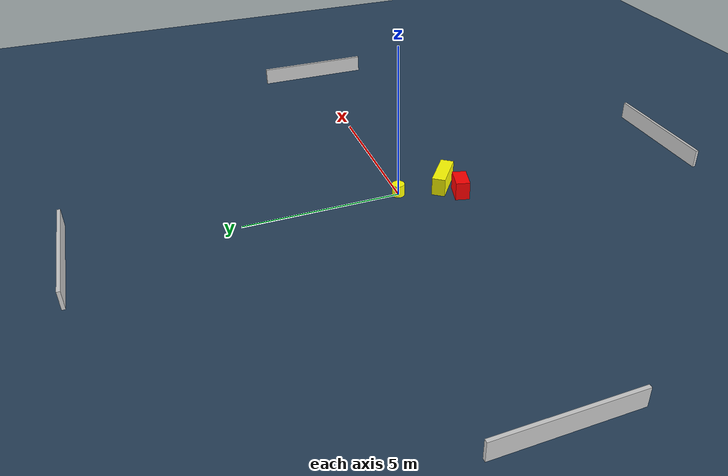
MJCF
<?xml version="1.0" ?>
<mujoco model="generated_environment">
  <option timestep="0.01" integrator="RK4" cone="elliptic"/>
  <default>
    <geom density="1"/>
  </default>
  <asset>
    <texture builtin="gradient" height="3072" name="skybox" rgb1="0.3 0.5 0.7" rgb2="0 0 0" type="skybox" width="512"/>
    <texture builtin="checker" height="300" name="groundplane" rgb1="0.2 0.3 0.4" rgb2="0.1 0.2 0.3" type="2d" width="300"/>
    <material name="groundplane" reflectance="0.2" texrepeat="5 5" texture="groundplane"/>
  </asset>
  <worldbody>
    <light dir="0 0 -1" directional="true" pos="0 0 1.5"/>
    <geom condim="3" friction="0.5 0.005 0.001" material="groundplane" name="floor" pos="0 0 0" size="0 0 0.05" type="plane"/>
    <body name="walls">
      <geom name="wall_1" condim="4" pos="-10.0 0.0 0.3" rgba="0.800000011920929 0.800000011920929 0.800000011920929 1.0" size="0.05 2.0 0.3" type="box"/>
      <geom name="wall_2" condim="4" pos="10.0 0.0 0.3" rgba="0.800000011920929 0.800000011920929 0.800000011920929 1.0" size="0.05 2.0 0.3" type="box"/>
      <geom name="wall_3" condim="4" pos="0.0 -10.0 0.3" rgba="0.800000011920929 0.800000011920929 0.800000011920929 1.0" size="2.0 0.05 0.3" type="box"/>
      <geom name="wall_4" condim="4" pos="0.0 10.0 0.3" rgba="0.800000011920929 0.800000011920929 0.800000011920929 1.0" size="2.0 0.05 0.3" type="box"/>
    </body>
    <body name="robot">
      <joint name="joint_x" type="slide" pos="0 0 0" axis="1 0 0"/>
      <joint name="joint_y" type="slide" pos="0 0 0" axis="0 1 0"/>
      <geom name="robot" type="cylinder" pos="0.0 0.0 0.2" size="0.2 0.2 0.0" mass="5.0" friction="1.0 0.005 0.0001" condim="4" rgba="1.0 1.0 0.0 1.0"/>
    </body>
    <body name="obstacle_1_movable">
      <geom name="obstacle_1_movable" condim="4" pos="-0.02198553100770927 -1.5370159212433303 0.3" euler="0 0 232.92308814248827" friction="0.0 0.005 0.001" rgba="1.0 1.0 0.0 1.0" size="0.2123048296726172 0.6214849362291548 0.3" type="box" mass="0.1"/>
      <joint type="free"/>
    </body>
    <body name="obstacle_2_static">
      <geom name="obstacle_2_static" condim="4" pos="-0.6613269337024321 -1.8742474884651565 0.3" euler="0 0 345.5859523683531" friction="0.0 0.005 0.001" rgba="1.0 0.0 0.0 1.0" size="0.36780927148799225 0.22484993217782273 0.3" type="box"/>
    </body>
  </worldbody>
  <actuator>
    <motor name="actuator_x" joint="joint_x" gear="1" ctrlrange="-1 1"/>
    <motor name="actuator_y" joint="joint_y" gear="1" ctrlrange="-1 1"/>
  </actuator>
</mujoco>
